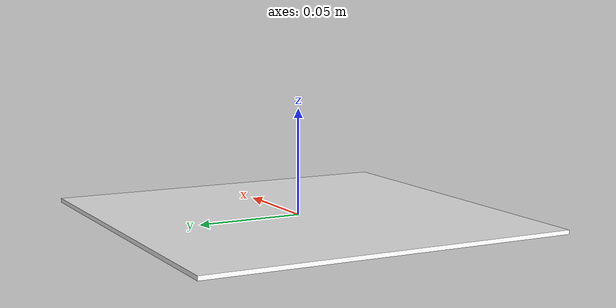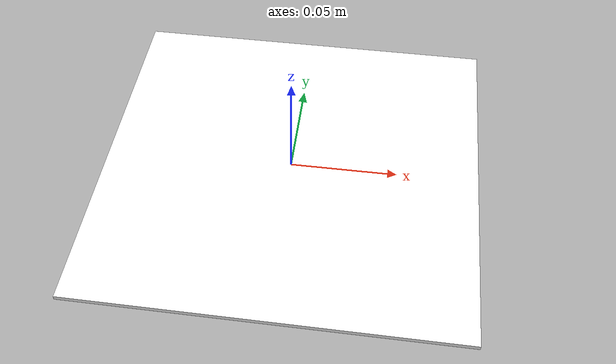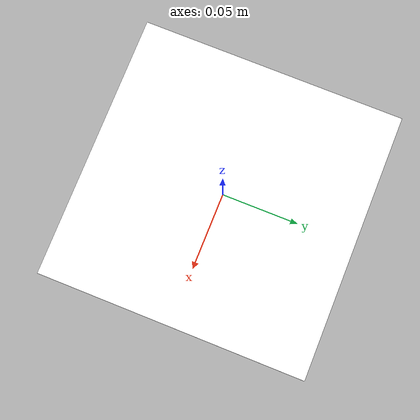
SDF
<?xml version="1.0"?>
<sdf version="1.9">
  <model name="aruco_marker_0">
    <static>true</static>
    <link name="link">

      <visual name="visual">
        <geometry>
          <!-- 17.6 cm square, 2 mm thick. The marker face is on the +Z side. -->
          <box>
            <size>0.176 0.176 0.002</size>
          </box>
        </geometry>
        <material>
          <diffuse>1 1 1 1</diffuse>
          <specular>0 0 0 1</specular>
          <pbr>
            <metal>
              <albedo_map>model://aruco_marker_0/materials/textures/aruco_4x4_id0.png</albedo_map>
            </metal>
          </pbr>
        </material>
      </visual>

      <collision name="collision">
        <geometry>
          <box>
            <size>0.176 0.176 0.002</size>
          </box>
        </geometry>
      </collision>

    </link>
  </model>
</sdf>
